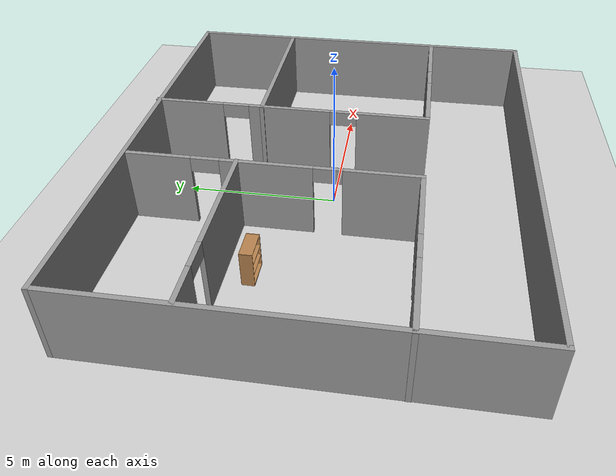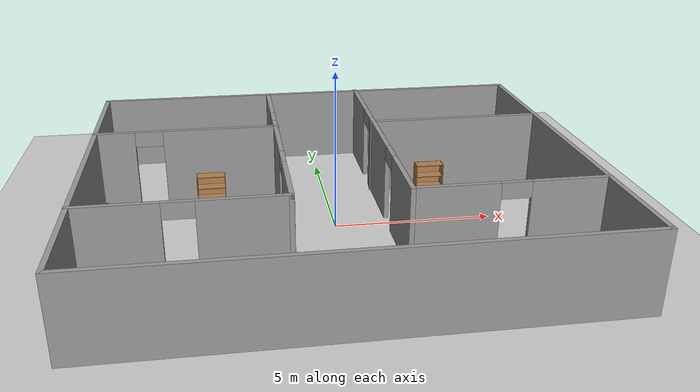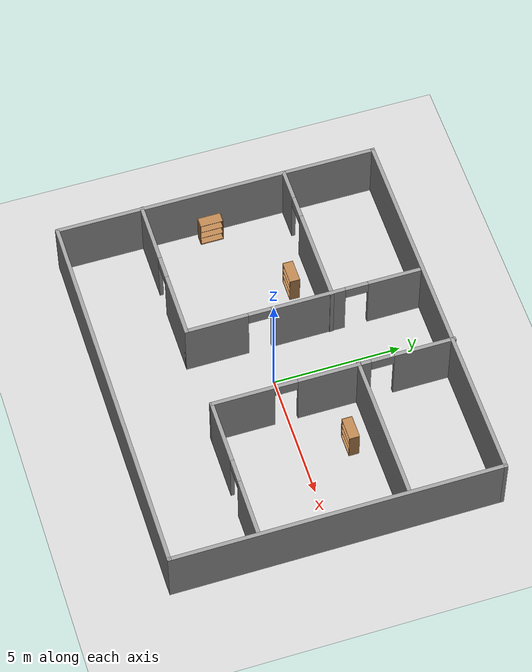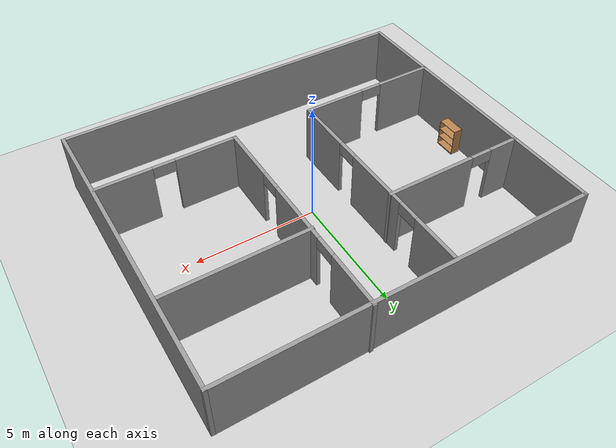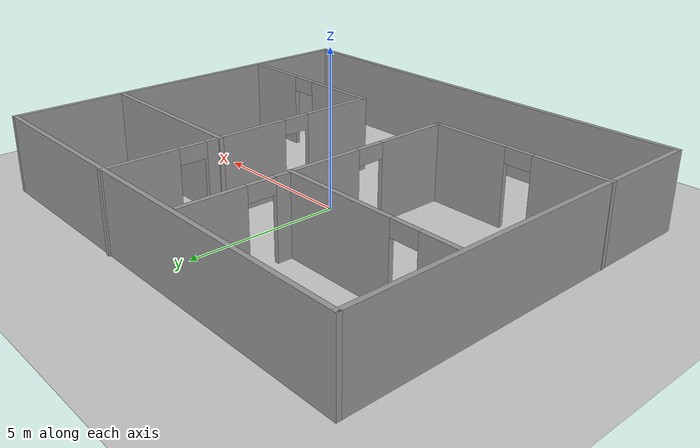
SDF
<sdf version="1.7">
 <world name="default">
  <light name="sun" type="directional">
   <pose>0 0 10 0 -0 0</pose>
   <diffuse>0.8 0.8 0.8 1</diffuse>
   <specular>0.2 0.2 0.2 1</specular>
   <attenuation>
    <range>1000</range>
    <constant>0.9</constant>
    <linear>0.01</linear>
    <quadratic>0.001</quadratic>
   </attenuation>
   <direction>-0.5 0.1 -0.9</direction>
   <spot><inner_angle>0</inner_angle><outer_angle>0</outer_angle><falloff>0</falloff></spot>
  </light>
  <model name="ground_plane">
   <static>1</static>
   <link name="link">
    <collision name="collision">
     <geometry><plane><normal>0 0 1</normal><size>100 100</size></plane></geometry>
     <surface>
      <contact><collide_bitmask>65535</collide_bitmask></contact>
      <friction><ode><mu>100</mu><mu2>50</mu2></ode></friction>
     </surface>
    </collision>
    <visual name="visual">
     <cast_shadows>0</cast_shadows>
     <geometry><plane><normal>0 0 1</normal><size>100 100</size></plane></geometry>
     <material>
      <script><uri>file://media/materials/scripts/gazebo.material</uri><name>Gazebo/Grey</name></script>
     </material>
    </visual>
   </link>
  </model>
  <gravity>0 0 -9.8</gravity>
  <magnetic_field>6e-06 2.3e-05 -4.2e-05</magnetic_field>
  <atmosphere type="adiabatic"/>
  <physics type="ode">
   <max_step_size>0.001</max_step_size>
   <real_time_factor>1</real_time_factor>
   <real_time_update_rate>1000</real_time_update_rate>
  </physics>
  <scene><ambient>0.4 0.4 0.4 1</ambient><background>0.7 0.7 0.7 1</background><shadows>1</shadows></scene>
  <audio><device>default</device></audio>
  <spherical_coordinates>
   <surface_model>EARTH_WGS84</surface_model>
   <latitude_deg>0</latitude_deg>
   <longitude_deg>0</longitude_deg>
   <elevation>0</elevation>
   <heading_deg>0</heading_deg>
  </spherical_coordinates>
  <model name="my_floor">
   <pose>-0.026176 0.105367 0 0 -0 0</pose>
   <link name="Wall_27">
    <collision name="Wall_27_Collision">
     <geometry><box><size>15 0.15 2.5</size></box></geometry>
     <pose>0 0 1.25 0 -0 0</pose>
    </collision>
    <visual name="Wall_27_Visual">
     <pose>0 0 1.25 0 -0 0</pose>
     <geometry><box><size>15 0.15 2.5</size></box></geometry>
     <material>
      <script><uri>file://media/materials/scripts/gazebo.material</uri><name>Gazebo/Grey</name></script>
      <ambient>1 1 1 1</ambient>
     </material>
     <meta><layer>0</layer></meta>
    </visual>
    <pose>0.006822 -6.3282 0 0 -0 0</pose>
   </link>
   <link name="Wall_28">
    <collision name="Wall_28_Collision">
     <geometry><box><size>12.75 0.15 2.5</size></box></geometry>
     <pose>0 0 1.25 0 -0 0</pose>
    </collision>
    <visual name="Wall_28_Visual">
     <pose>0 0 1.25 0 -0 0</pose>
     <geometry><box><size>12.75 0.15 2.5</size></box></geometry>
     <material>
      <script><uri>file://media/materials/scripts/gazebo.material</uri><name>Gazebo/Grey</name></script>
      <ambient>1 1 1 1</ambient>
     </material>
     <meta><layer>0</layer></meta>
    </visual>
    <pose>7.43182 -0.028196 0 0 -0 1.5708</pose>
   </link>
   <link name="Wall_29">
    <collision name="Wall_29_Collision">
     <geometry><box><size>15 0.15 2.5</size></box></geometry>
     <pose>0 0 1.25 0 -0 0</pose>
    </collision>
    <visual name="Wall_29_Visual">
     <pose>0 0 1.25 0 -0 0</pose>
     <geometry><box><size>15 0.15 2.5</size></box></geometry>
     <material>
      <script><uri>file://media/materials/scripts/gazebo.material</uri><name>Gazebo/Grey</name></script>
      <ambient>1 1 1 1</ambient>
     </material>
     <meta><layer>0</layer></meta>
    </visual>
    <pose>0.006822 6.2718 0 0 -0 3.14159</pose>
   </link>
   <link name="Wall_30">
    <collision name="Wall_30_Collision">
     <geometry><box><size>12.75 0.15 2.5</size></box></geometry>
     <pose>0 0 1.25 0 -0 0</pose>
    </collision>
    <visual name="Wall_30_Visual">
     <pose>0 0 1.25 0 -0 0</pose>
     <geometry><box><size>12.75 0.15 2.5</size></box></geometry>
     <material>
      <script><uri>file://media/materials/scripts/gazebo.material</uri><name>Gazebo/Grey</name></script>
      <ambient>1 1 1 1</ambient>
     </material>
     <meta><layer>0</layer></meta>
    </visual>
    <pose>-7.41818 -0.028196 0 0 -0 -1.5708</pose>
   </link>
   <link name="Wall_32">
    <pose>-4.50682 -2.98939 0 0 -0 0</pose>
    <visual name="Wall_32_Visual_0">
     <pose>-1.76834 0 1.25 0 -0 0</pose>
     <geometry><box><size>2.46332 0.15 2.5</size></box></geometry>
     <material>
      <script><uri>file://media/materials/scripts/gazebo.material</uri><name>Gazebo/Grey</name></script>
      <ambient>1 1 1 1</ambient>
     </material>
     <meta><layer>0</layer></meta>
    </visual>
    <collision name="Wall_32_Collision_0">
     <geometry><box><size>2.46332 0.15 2.5</size></box></geometry>
     <pose>-1.76834 0 1.25 0 -0 0</pose>
    </collision>
    <visual name="Wall_32_Visual_1">
     <pose>1.68166 0 1.25 0 -0 0</pose>
     <geometry><box><size>2.63668 0.15 2.5</size></box></geometry>
     <material>
      <script><uri>file://media/materials/scripts/gazebo.material</uri><name>Gazebo/Grey</name></script>
      <ambient>1 1 1 1</ambient>
     </material>
     <meta><layer>0</layer></meta>
    </visual>
    <collision name="Wall_32_Collision_1">
     <geometry><box><size>2.63668 0.15 2.5</size></box></geometry>
     <pose>1.68166 0 1.25 0 -0 0</pose>
    </collision>
    <visual name="Wall_32_Visual_2">
     <pose>-0.086681 0 2.25 0 -0 0</pose>
     <geometry><box><size>0.9 0.15 0.5</size></box></geometry>
     <material>
      <script><uri>file://media/materials/scripts/gazebo.material</uri><name>Gazebo/Grey</name></script>
      <ambient>1 1 1 1</ambient>
     </material>
     <meta><layer>0</layer></meta>
    </visual>
    <collision name="Wall_32_Collision_2">
     <geometry><box><size>0.9 0.15 0.5</size></box></geometry>
     <pose>-0.086681 0 2.25 0 -0 0</pose>
    </collision>
   </link>
   <link name="Wall_33">
    <pose>-1.58182 1.56061 0 0 -0 1.5708</pose>
    <visual name="Wall_33_Visual_0">
     <pose>-3.39015 0 1.25 0 -0 0</pose>
     <geometry><box><size>2.4697 0.15 2.5</size></box></geometry>
     <material>
      <script><uri>file://media/materials/scripts/gazebo.material</uri><name>Gazebo/Grey</name></script>
      <ambient>1 1 1 1</ambient>
     </material>
     <meta><layer>0</layer></meta>
    </visual>
    <collision name="Wall_33_Collision_0">
     <geometry><box><size>2.4697 0.15 2.5</size></box></geometry>
     <pose>-3.39015 0 1.25 0 -0 0</pose>
    </collision>
    <visual name="Wall_33_Visual_1">
     <pose>0.194349 0 1.25 0 -0 0</pose>
     <geometry><box><size>2.89931 0.15 2.5</size></box></geometry>
     <material>
      <script><uri>file://media/materials/scripts/gazebo.material</uri><name>Gazebo/Grey</name></script>
      <ambient>1 1 1 1</ambient>
     </material>
     <meta><layer>0</layer></meta>
    </visual>
    <collision name="Wall_33_Collision_1">
     <geometry><box><size>2.89931 0.15 2.5</size></box></geometry>
     <pose>0.194349 0 1.25 0 -0 0</pose>
    </collision>
    <visual name="Wall_33_Visual_2">
     <pose>3.5845 0 1.25 0 -0 0</pose>
     <geometry><box><size>2.081 0.15 2.5</size></box></geometry>
     <material>
      <script><uri>file://media/materials/scripts/gazebo.material</uri><name>Gazebo/Grey</name></script>
      <ambient>1 1 1 1</ambient>
     </material>
     <meta><layer>0</layer></meta>
    </visual>
    <collision name="Wall_33_Collision_2">
     <geometry><box><size>2.081 0.15 2.5</size></box></geometry>
     <pose>3.5845 0 1.25 0 -0 0</pose>
    </collision>
    <visual name="Wall_33_Visual_3">
     <pose>-1.7053 0 2.25 0 -0 0</pose>
     <geometry><box><size>0.9 0.15 0.5</size></box></geometry>
     <material>
      <script><uri>file://media/materials/scripts/gazebo.material</uri><name>Gazebo/Grey</name></script>
      <ambient>1 1 1 1</ambient>
     </material>
     <meta><layer>0</layer></meta>
    </visual>
    <collision name="Wall_33_Collision_3">
     <geometry><box><size>0.9 0.15 0.5</size></box></geometry>
     <pose>-1.7053 0 2.25 0 -0 0</pose>
    </collision>
    <visual name="Wall_33_Visual_4">
     <pose>2.094 0 2.25 0 -0 0</pose>
     <geometry><box><size>0.9 0.15 0.5</size></box></geometry>
     <material>
      <script><uri>file://media/materials/scripts/gazebo.material</uri><name>Gazebo/Grey</name></script>
      <ambient>1 1 1 1</ambient>
     </material>
     <meta><layer>0</layer></meta>
    </visual>
    <collision name="Wall_33_Collision_4">
     <geometry><box><size>0.9 0.15 0.5</size></box></geometry>
     <pose>2.094 0 2.25 0 -0 0</pose>
    </collision>
   </link>
   <link name="Wall_35">
    <pose>-4.4828 2.6696 0 0 -0 0</pose>
    <visual name="Wall_35_Visual_0">
     <pose>-2.34321 0 1.25 0 -0 0</pose>
     <geometry><box><size>1.31358 0.15 2.5</size></box></geometry>
     <material>
      <script><uri>file://media/materials/scripts/gazebo.material</uri><name>Gazebo/Grey</name></script>
      <ambient>1 1 1 1</ambient>
     </material>
     <meta><layer>0</layer></meta>
    </visual>
    <collision name="Wall_35_Collision_0">
     <geometry><box><size>1.31358 0.15 2.5</size></box></geometry>
     <pose>-2.34321 0 1.25 0 -0 0</pose>
    </collision>
    <visual name="Wall_35_Visual_1">
     <pose>1.10679 0 1.25 0 -0 0</pose>
     <geometry><box><size>3.78642 0.15 2.5</size></box></geometry>
     <material>
      <script><uri>file://media/materials/scripts/gazebo.material</uri><name>Gazebo/Grey</name></script>
      <ambient>1 1 1 1</ambient>
     </material>
     <meta><layer>0</layer></meta>
    </visual>
    <collision name="Wall_35_Collision_1">
     <geometry><box><size>3.78642 0.15 2.5</size></box></geometry>
     <pose>1.10679 0 1.25 0 -0 0</pose>
    </collision>
    <visual name="Wall_35_Visual_2">
     <pose>-1.23642 0 2.25 0 -0 0</pose>
     <geometry><box><size>0.9 0.15 0.5</size></box></geometry>
     <material>
      <script><uri>file://media/materials/scripts/gazebo.material</uri><name>Gazebo/Grey</name></script>
      <ambient>1 1 1 1</ambient>
     </material>
     <meta><layer>0</layer></meta>
    </visual>
    <collision name="Wall_35_Collision_2">
     <geometry><box><size>0.9 0.15 0.5</size></box></geometry>
     <pose>-1.23642 0 2.25 0 -0 0</pose>
    </collision>
   </link>
   <link name="Wall_37">
    <pose>1.73867 1.6532 0 0 -0 -1.5708</pose>
    <visual name="Wall_37_Visual_0">
     <pose>-3.54794 0 1.25 0 -0 0</pose>
     <geometry><box><size>2.40412 0.15 2.5</size></box></geometry>
     <material>
      <script><uri>file://media/materials/scripts/gazebo.material</uri><name>Gazebo/Grey</name></script>
      <ambient>1 1 1 1</ambient>
     </material>
     <meta><layer>0</layer></meta>
    </visual>
    <collision name="Wall_37_Collision_0">
     <geometry><box><size>2.40412 0.15 2.5</size></box></geometry>
     <pose>-3.54794 0 1.25 0 -0 0</pose>
    </collision>
    <visual name="Wall_37_Visual_1">
     <pose>-0.031403 0 1.25 0 -0 0</pose>
     <geometry><box><size>2.82895 0.15 2.5</size></box></geometry>
     <material>
      <script><uri>file://media/materials/scripts/gazebo.material</uri><name>Gazebo/Grey</name></script>
      <ambient>1 1 1 1</ambient>
     </material>
     <meta><layer>0</layer></meta>
    </visual>
    <collision name="Wall_37_Collision_1">
     <geometry><box><size>2.82895 0.15 2.5</size></box></geometry>
     <pose>-0.031403 0 1.25 0 -0 0</pose>
    </collision>
    <visual name="Wall_37_Visual_2">
     <pose>3.51654 0 1.25 0 -0 0</pose>
     <geometry><box><size>2.46693 0.15 2.5</size></box></geometry>
     <material>
      <script><uri>file://media/materials/scripts/gazebo.material</uri><name>Gazebo/Grey</name></script>
      <ambient>1 1 1 1</ambient>
     </material>
     <meta><layer>0</layer></meta>
    </visual>
    <collision name="Wall_37_Collision_2">
     <geometry><box><size>2.46693 0.15 2.5</size></box></geometry>
     <pose>3.51654 0 1.25 0 -0 0</pose>
    </collision>
    <visual name="Wall_37_Visual_3">
     <pose>-1.89588 0 2.25 0 -0 0</pose>
     <geometry><box><size>0.9 0.15 0.5</size></box></geometry>
     <material>
      <script><uri>file://media/materials/scripts/gazebo.material</uri><name>Gazebo/Grey</name></script>
      <ambient>1 1 1 1</ambient>
     </material>
     <meta><layer>0</layer></meta>
    </visual>
    <collision name="Wall_37_Collision_3">
     <geometry><box><size>0.9 0.15 0.5</size></box></geometry>
     <pose>-1.89588 0 2.25 0 -0 0</pose>
    </collision>
    <visual name="Wall_37_Visual_4">
     <pose>1.83307 0 2.25 0 -0 0</pose>
     <geometry><box><size>0.9 0.15 0.5</size></box></geometry>
     <material>
      <script><uri>file://media/materials/scripts/gazebo.material</uri><name>Gazebo/Grey</name></script>
      <ambient>1 1 1 1</ambient>
     </material>
     <meta><layer>0</layer></meta>
    </visual>
    <collision name="Wall_37_Collision_4">
     <geometry><box><size>0.9 0.15 0.5</size></box></geometry>
     <pose>1.83307 0 2.25 0 -0 0</pose>
    </collision>
   </link>
   <link name="Wall_38">
    <pose>4.53867 -3.0218 0 0 -0 0</pose>
    <visual name="Wall_38_Visual_0">
     <pose>-1.58499 0 1.25 0 -0 0</pose>
     <geometry><box><size>2.58002 0.15 2.5</size></box></geometry>
     <material>
      <script><uri>file://media/materials/scripts/gazebo.material</uri><name>Gazebo/Grey</name></script>
      <ambient>1 1 1 1</ambient>
     </material>
     <meta><layer>0</layer></meta>
    </visual>
    <collision name="Wall_38_Collision_0">
     <geometry><box><size>2.58002 0.15 2.5</size></box></geometry>
     <pose>-1.58499 0 1.25 0 -0 0</pose>
    </collision>
    <visual name="Wall_38_Visual_1">
     <pose>1.74001 0 1.25 0 -0 0</pose>
     <geometry><box><size>2.26998 0.15 2.5</size></box></geometry>
     <material>
      <script><uri>file://media/materials/scripts/gazebo.material</uri><name>Gazebo/Grey</name></script>
      <ambient>1 1 1 1</ambient>
     </material>
     <meta><layer>0</layer></meta>
    </visual>
    <collision name="Wall_38_Collision_1">
     <geometry><box><size>2.26998 0.15 2.5</size></box></geometry>
     <pose>1.74001 0 1.25 0 -0 0</pose>
    </collision>
    <visual name="Wall_38_Visual_2">
     <pose>0.155016 0 2.25 0 -0 0</pose>
     <geometry><box><size>0.9 0.15 0.5</size></box></geometry>
     <material>
      <script><uri>file://media/materials/scripts/gazebo.material</uri><name>Gazebo/Grey</name></script>
      <ambient>1 1 1 1</ambient>
     </material>
     <meta><layer>0</layer></meta>
    </visual>
    <collision name="Wall_38_Collision_2">
     <geometry><box><size>0.9 0.15 0.5</size></box></geometry>
     <pose>0.155016 0 2.25 0 -0 0</pose>
    </collision>
   </link>
   <link name="Wall_40">
    <collision name="Wall_40_Collision">
     <geometry><box><size>5.75 0.15 2.5</size></box></geometry>
     <pose>0 0 1.25 0 -0 0</pose>
    </collision>
    <visual name="Wall_40_Visual">
     <pose>0 0 1.25 0 -0 0</pose>
     <geometry><box><size>5.75 0.15 2.5</size></box></geometry>
     <material>
      <script><uri>file://media/materials/scripts/gazebo.material</uri><name>Gazebo/Grey</name></script>
      <ambient>1 1 1 1</ambient>
     </material>
     <meta><layer>0</layer></meta>
    </visual>
    <pose>4.5035 2.63443 0 0 -0 0</pose>
   </link>
   <static>1</static>
  </model>
  <model name="bookshelf">
   <static>1</static>
   <link name="link">
    <inertial><mass>1</mass></inertial>
    <collision name="back">
     <pose>0 0.005 0.6 0 -0 0</pose>
     <geometry><box><size>0.9 0.01 1.2</size></box></geometry>
    </collision>
    <visual name="visual1">
     <pose>0 0.005 0.6 0 -0 0</pose>
     <geometry><box><size>0.9 0.01 1.2</size></box></geometry>
     <material>
      <script><uri>file://media/materials/scripts/gazebo.material</uri><name>Gazebo/Wood</name></script>
     </material>
    </visual>
    <collision name="left_side">
     <pose>0.45 -0.195 0.6 0 -0 0</pose>
     <geometry><box><size>0.02 0.4 1.2</size></box></geometry>
    </collision>
    <visual name="visual2">
     <pose>0.45 -0.195 0.6 0 -0 0</pose>
     <geometry><box><size>0.02 0.4 1.2</size></box></geometry>
     <material>
      <script><uri>file://media/materials/scripts/gazebo.material</uri><name>Gazebo/Wood</name></script>
     </material>
    </visual>
    <collision name="right_side">
     <pose>-0.45 -0.195 0.6 0 -0 0</pose>
     <geometry><box><size>0.02 0.4 1.2</size></box></geometry>
    </collision>
    <visual name="visual3">
     <pose>-0.45 -0.195 0.6 0 -0 0</pose>
     <geometry><box><size>0.02 0.4 1.2</size></box></geometry>
     <material>
      <script><uri>file://media/materials/scripts/gazebo.material</uri><name>Gazebo/Wood</name></script>
     </material>
    </visual>
    <collision name="bottom">
     <pose>0 -0.195 0.03 0 -0 0</pose>
     <geometry><box><size>0.88 0.4 0.06</size></box></geometry>
    </collision>
    <visual name="visual4">
     <pose>0 -0.195 0.03 0 -0 0</pose>
     <geometry><box><size>0.88 0.4 0.06</size></box></geometry>
     <material>
      <script><uri>file://media/materials/scripts/gazebo.material</uri><name>Gazebo/Wood</name></script>
     </material>
    </visual>
    <collision name="top">
     <pose>0 -0.195 1.19 0 -0 0</pose>
     <geometry><box><size>0.88 0.4 0.02</size></box></geometry>
    </collision>
    <visual name="visual5">
     <pose>0 -0.195 1.19 0 -0 0</pose>
     <geometry><box><size>0.88 0.4 0.02</size></box></geometry>
     <material>
      <script><uri>file://media/materials/scripts/gazebo.material</uri><name>Gazebo/Wood</name></script>
     </material>
    </visual>
    <collision name="low_shelf">
     <pose>0 -0.195 0.43 0 -0 0</pose>
     <geometry><box><size>0.88 0.4 0.02</size></box></geometry>
    </collision>
    <visual name="visual6">
     <pose>0 -0.195 0.43 0 -0 0</pose>
     <geometry><box><size>0.88 0.4 0.02</size></box></geometry>
     <material>
      <script><uri>file://media/materials/scripts/gazebo.material</uri><name>Gazebo/Wood</name></script>
     </material>
    </visual>
    <collision name="high_shelf">
     <pose>0 -0.195 0.8 0 -0 0</pose>
     <geometry><box><size>0.88 0.4 0.02</size></box></geometry>
    </collision>
    <visual name="visual7">
     <pose>0 -0.195 0.8 0 -0 0</pose>
     <geometry><box><size>0.88 0.4 0.02</size></box></geometry>
     <material>
      <script><uri>file://media/materials/scripts/gazebo.material</uri><name>Gazebo/Wood</name></script>
     </material>
    </visual>
   </link>
   <pose>-3.82236 2.10918 0 0 -0 0</pose>
  </model>
  <model name="bookshelf_clone">
   <static>1</static>
   <link name="link">
    <inertial><mass>1</mass></inertial>
    <collision name="back">
     <pose>0 0.005 0.6 0 -0 0</pose>
     <geometry><box><size>0.9 0.01 1.2</size></box></geometry>
    </collision>
    <visual name="visual1">
     <pose>0 0.005 0.6 0 -0 0</pose>
     <geometry><box><size>0.9 0.01 1.2</size></box></geometry>
     <material>
      <script><uri>file://media/materials/scripts/gazebo.material</uri><name>Gazebo/Wood</name></script>
     </material>
    </visual>
    <collision name="left_side">
     <pose>0.45 -0.195 0.6 0 -0 0</pose>
     <geometry><box><size>0.02 0.4 1.2</size></box></geometry>
    </collision>
    <visual name="visual2">
     <pose>0.45 -0.195 0.6 0 -0 0</pose>
     <geometry><box><size>0.02 0.4 1.2</size></box></geometry>
     <material>
      <script><uri>file://media/materials/scripts/gazebo.material</uri><name>Gazebo/Wood</name></script>
     </material>
    </visual>
    <collision name="right_side">
     <pose>-0.45 -0.195 0.6 0 -0 0</pose>
     <geometry><box><size>0.02 0.4 1.2</size></box></geometry>
    </collision>
    <visual name="visual3">
     <pose>-0.45 -0.195 0.6 0 -0 0</pose>
     <geometry><box><size>0.02 0.4 1.2</size></box></geometry>
     <material>
      <script><uri>file://media/materials/scripts/gazebo.material</uri><name>Gazebo/Wood</name></script>
     </material>
    </visual>
    <collision name="bottom">
     <pose>0 -0.195 0.03 0 -0 0</pose>
     <geometry><box><size>0.88 0.4 0.06</size></box></geometry>
    </collision>
    <visual name="visual4">
     <pose>0 -0.195 0.03 0 -0 0</pose>
     <geometry><box><size>0.88 0.4 0.06</size></box></geometry>
     <material>
      <script><uri>file://media/materials/scripts/gazebo.material</uri><name>Gazebo/Wood</name></script>
     </material>
    </visual>
    <collision name="top">
     <pose>0 -0.195 1.19 0 -0 0</pose>
     <geometry><box><size>0.88 0.4 0.02</size></box></geometry>
    </collision>
    <visual name="visual5">
     <pose>0 -0.195 1.19 0 -0 0</pose>
     <geometry><box><size>0.88 0.4 0.02</size></box></geometry>
     <material>
      <script><uri>file://media/materials/scripts/gazebo.material</uri><name>Gazebo/Wood</name></script>
     </material>
    </visual>
    <collision name="low_shelf">
     <pose>0 -0.195 0.43 0 -0 0</pose>
     <geometry><box><size>0.88 0.4 0.02</size></box></geometry>
    </collision>
    <visual name="visual6">
     <pose>0 -0.195 0.43 0 -0 0</pose>
     <geometry><box><size>0.88 0.4 0.02</size></box></geometry>
     <material>
      <script><uri>file://media/materials/scripts/gazebo.material</uri><name>Gazebo/Wood</name></script>
     </material>
    </visual>
    <collision name="high_shelf">
     <pose>0 -0.195 0.8 0 -0 0</pose>
     <geometry><box><size>0.88 0.4 0.02</size></box></geometry>
    </collision>
    <visual name="visual7">
     <pose>0 -0.195 0.8 0 -0 0</pose>
     <geometry><box><size>0.88 0.4 0.02</size></box></geometry>
     <material>
      <script><uri>file://media/materials/scripts/gazebo.material</uri><name>Gazebo/Wood</name></script>
     </material>
    </visual>
   </link>
   <pose>-7.2578 -0.313768 0 0 -0 1.57</pose>
  </model>
  <model name="bookshelf_clone_0">
   <static>1</static>
   <link name="link">
    <inertial><mass>1</mass></inertial>
    <collision name="back">
     <pose>0 0.005 0.6 0 -0 0</pose>
     <geometry><box><size>0.9 0.01 1.2</size></box></geometry>
    </collision>
    <visual name="visual1">
     <pose>0 0.005 0.6 0 -0 0</pose>
     <geometry><box><size>0.9 0.01 1.2</size></box></geometry>
     <material>
      <script><uri>file://media/materials/scripts/gazebo.material</uri><name>Gazebo/Wood</name></script>
     </material>
    </visual>
    <collision name="left_side">
     <pose>0.45 -0.195 0.6 0 -0 0</pose>
     <geometry><box><size>0.02 0.4 1.2</size></box></geometry>
    </collision>
    <visual name="visual2">
     <pose>0.45 -0.195 0.6 0 -0 0</pose>
     <geometry><box><size>0.02 0.4 1.2</size></box></geometry>
     <material>
      <script><uri>file://media/materials/scripts/gazebo.material</uri><name>Gazebo/Wood</name></script>
     </material>
    </visual>
    <collision name="right_side">
     <pose>-0.45 -0.195 0.6 0 -0 0</pose>
     <geometry><box><size>0.02 0.4 1.2</size></box></geometry>
    </collision>
    <visual name="visual3">
     <pose>-0.45 -0.195 0.6 0 -0 0</pose>
     <geometry><box><size>0.02 0.4 1.2</size></box></geometry>
     <material>
      <script><uri>file://media/materials/scripts/gazebo.material</uri><name>Gazebo/Wood</name></script>
     </material>
    </visual>
    <collision name="bottom">
     <pose>0 -0.195 0.03 0 -0 0</pose>
     <geometry><box><size>0.88 0.4 0.06</size></box></geometry>
    </collision>
    <visual name="visual4">
     <pose>0 -0.195 0.03 0 -0 0</pose>
     <geometry><box><size>0.88 0.4 0.06</size></box></geometry>
     <material>
      <script><uri>file://media/materials/scripts/gazebo.material</uri><name>Gazebo/Wood</name></script>
     </material>
    </visual>
    <collision name="top">
     <pose>0 -0.195 1.19 0 -0 0</pose>
     <geometry><box><size>0.88 0.4 0.02</size></box></geometry>
    </collision>
    <visual name="visual5">
     <pose>0 -0.195 1.19 0 -0 0</pose>
     <geometry><box><size>0.88 0.4 0.02</size></box></geometry>
     <material>
      <script><uri>file://media/materials/scripts/gazebo.material</uri><name>Gazebo/Wood</name></script>
     </material>
    </visual>
    <collision name="low_shelf">
     <pose>0 -0.195 0.43 0 -0 0</pose>
     <geometry><box><size>0.88 0.4 0.02</size></box></geometry>
    </collision>
    <visual name="visual6">
     <pose>0 -0.195 0.43 0 -0 0</pose>
     <geometry><box><size>0.88 0.4 0.02</size></box></geometry>
     <material>
      <script><uri>file://media/materials/scripts/gazebo.material</uri><name>Gazebo/Wood</name></script>
     </material>
    </visual>
    <collision name="high_shelf">
     <pose>0 -0.195 0.8 0 -0 0</pose>
     <geometry><box><size>0.88 0.4 0.02</size></box></geometry>
    </collision>
    <visual name="visual7">
     <pose>0 -0.195 0.8 0 -0 0</pose>
     <geometry><box><size>0.88 0.4 0.02</size></box></geometry>
     <material>
      <script><uri>file://media/materials/scripts/gazebo.material</uri><name>Gazebo/Wood</name></script>
     </material>
    </visual>
   </link>
   <pose>3.46794 2.05432 0 0 -0 0</pose>
  </model>
 </world>
</sdf>
